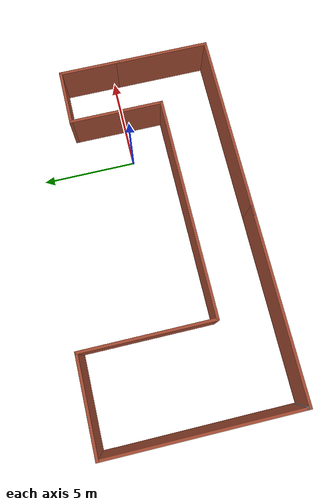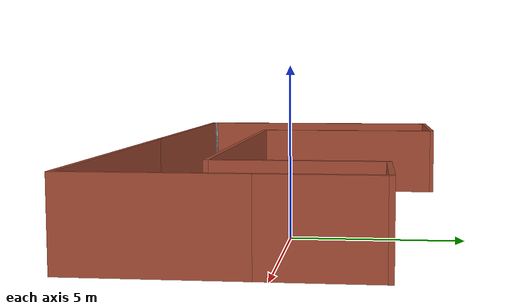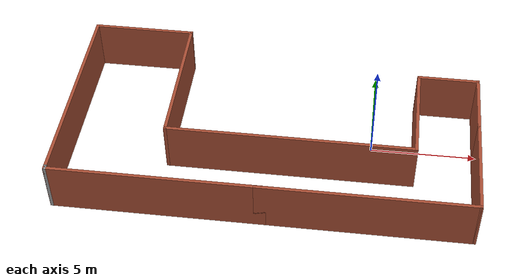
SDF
<?xml version='1.0'?>
<sdf version='1.6'>
  <model name='juhabasic'>
    <pose frame=''>-4.77 -0.185 0 0 -0 0</pose>
    <link name='Wall_0'>
      <collision name='Wall_0_Collision'>
        <geometry>
          <box>
            <size>10 0.15 2.5</size>
          </box>
        </geometry>
        <pose frame=''>0 0 1.25 0 -0 0</pose>
      </collision>
      <visual name='Wall_0_Visual'>
        <pose frame=''>0 0 1.25 0 -0 0</pose>
        <geometry>
          <box>
            <size>10 0.15 2.5</size>
          </box>
        </geometry>
        <material>
          <script>
            <uri>file://media/materials/scripts/gazebo.material</uri>
            <name>Gazebo/Bricks</name>
          </script>
          <ambient>1 1 1 1</ambient>
        </material>
        <meta>
          <layer>0</layer>
        </meta>
      </visual>
      <pose frame=''>4.725 -4.975 0 0 -0 0</pose>
    </link>
    <link name='Wall_1'>
      <collision name='Wall_1_Collision'>
        <geometry>
          <box>
            <size>5 0.15 2.5</size>
          </box>
        </geometry>
        <pose frame=''>0 0 1.25 0 -0 0</pose>
      </collision>
      <visual name='Wall_1_Visual'>
        <pose frame=''>0 0 1.25 0 -0 0</pose>
        <geometry>
          <box>
            <size>5 0.15 2.5</size>
          </box>
        </geometry>
        <material>
          <script>
            <uri>file://media/materials/scripts/gazebo.material</uri>
            <name>Gazebo/Bricks</name>
          </script>
          <ambient>1 1 1 1</ambient>
        </material>
        <meta>
          <layer>0</layer>
        </meta>
      </visual>
      <pose frame=''>9.65 -2.55 0 0 -0 1.5708</pose>
    </link>
    <link name='Wall_10'>
      <collision name='Wall_10_Collision'>
        <geometry>
          <box>
            <size>0.15 0.15 2.5</size>
          </box>
        </geometry>
        <pose frame=''>0 0 1.25 0 -0 0</pose>
      </collision>
      <visual name='Wall_10_Visual'>
        <pose frame=''>0 0 1.25 0 -0 0</pose>
        <geometry>
          <box>
            <size>0.15 0.15 2.5</size>
          </box>
        </geometry>
        <material>
          <script>
            <uri>file://media/materials/scripts/gazebo.material</uri>
            <name>Gazebo/Grey</name>
          </script>
          <ambient>1 1 1 1</ambient>
        </material>
        <meta>
          <layer>0</layer>
        </meta>
      </visual>
      <pose frame=''>-9.65 -4.875 0 0 -0 0</pose>
    </link>
    <link name='Wall_11'>
      <collision name='Wall_11_Collision'>
        <geometry>
          <box>
            <size>0.25 0.15 2.5</size>
          </box>
        </geometry>
        <pose frame=''>0 0 1.25 0 -0 0</pose>
      </collision>
      <visual name='Wall_11_Visual'>
        <pose frame=''>0 0 1.25 0 -0 0</pose>
        <geometry>
          <box>
            <size>0.25 0.15 2.5</size>
          </box>
        </geometry>
        <material>
          <script>
            <uri>file://media/materials/scripts/gazebo.material</uri>
            <name>Gazebo/Grey</name>
          </script>
          <ambient>1 1 1 1</ambient>
        </material>
        <meta>
          <layer>0</layer>
        </meta>
      </visual>
      <pose frame=''>-9.65 -4.925 0 0 0 -1.5708</pose>
    </link>
    <link name='Wall_12'>
      <collision name='Wall_12_Collision'>
        <geometry>
          <box>
            <size>10 0.15 2.5</size>
          </box>
        </geometry>
        <pose frame=''>0 0 1.25 0 -0 0</pose>
      </collision>
      <visual name='Wall_12_Visual'>
        <pose frame=''>0 0 1.25 0 -0 0</pose>
        <geometry>
          <box>
            <size>10 0.15 2.5</size>
          </box>
        </geometry>
        <material>
          <script>
            <uri>file://media/materials/scripts/gazebo.material</uri>
            <name>Gazebo/Bricks</name>
          </script>
          <ambient>1 1 1 1</ambient>
        </material>
        <meta>
          <layer>0</layer>
        </meta>
      </visual>
      <pose frame=''>-4.725 -4.975 0 0 -0 0</pose>
    </link>
    <link name='Wall_2'>
      <collision name='Wall_2_Collision'>
        <geometry>
          <box>
            <size>3.25 0.15 2.5</size>
          </box>
        </geometry>
        <pose frame=''>0 0 1.25 0 -0 0</pose>
      </collision>
      <visual name='Wall_2_Visual'>
        <pose frame=''>0 0 1.25 0 -0 0</pose>
        <geometry>
          <box>
            <size>3.25 0.15 2.5</size>
          </box>
        </geometry>
        <material>
          <script>
            <uri>file://media/materials/scripts/gazebo.material</uri>
            <name>Gazebo/Bricks</name>
          </script>
          <ambient>1 1 1 1</ambient>
        </material>
        <meta>
          <layer>0</layer>
        </meta>
      </visual>
      <pose frame=''>9.65 1.425 0 0 -0 1.5708</pose>
    </link>
    <link name='Wall_3'>
      <collision name='Wall_3_Collision'>
        <geometry>
          <box>
            <size>3 0.15 2.5</size>
          </box>
        </geometry>
        <pose frame=''>0 0 1.25 0 -0 0</pose>
      </collision>
      <visual name='Wall_3_Visual'>
        <pose frame=''>0 0 1.25 0 -0 0</pose>
        <geometry>
          <box>
            <size>3 0.15 2.5</size>
          </box>
        </geometry>
        <material>
          <script>
            <uri>file://media/materials/scripts/gazebo.material</uri>
            <name>Gazebo/Bricks</name>
          </script>
          <ambient>1 1 1 1</ambient>
        </material>
        <meta>
          <layer>0</layer>
        </meta>
      </visual>
      <pose frame=''>8.225 2.975 0 0 -0 3.14159</pose>
    </link>
    <link name='Wall_4'>
      <collision name='Wall_4_Collision'>
        <geometry>
          <box>
            <size>5 0.15 2.5</size>
          </box>
        </geometry>
        <pose frame=''>0 0 1.25 0 -0 0</pose>
      </collision>
      <visual name='Wall_4_Visual'>
        <pose frame=''>0 0 1.25 0 -0 0</pose>
        <geometry>
          <box>
            <size>5 0.15 2.5</size>
          </box>
        </geometry>
        <material>
          <script>
            <uri>file://media/materials/scripts/gazebo.material</uri>
            <name>Gazebo/Bricks</name>
          </script>
          <ambient>1 1 1 1</ambient>
        </material>
        <meta>
          <layer>0</layer>
        </meta>
      </visual>
      <pose frame=''>6.8 0.55 0 0 0 -1.5708</pose>
    </link>
    <link name='Wall_5'>
      <collision name='Wall_5_Collision'>
        <geometry>
          <box>
            <size>11.75 0.15 2.5</size>
          </box>
        </geometry>
        <pose frame=''>0 0 1.25 0 -0 0</pose>
      </collision>
      <visual name='Wall_5_Visual'>
        <pose frame=''>0 0 1.25 0 -0 0</pose>
        <geometry>
          <box>
            <size>11.75 0.15 2.5</size>
          </box>
        </geometry>
        <material>
          <script>
            <uri>file://media/materials/scripts/gazebo.material</uri>
            <name>Gazebo/Bricks</name>
          </script>
          <ambient>1 1 1 1</ambient>
        </material>
        <meta>
          <layer>0</layer>
        </meta>
      </visual>
      <pose frame=''>1 -1.875 0 0 -0 3.14159</pose>
    </link>
    <link name='Wall_6'>
      <collision name='Wall_6_Collision'>
        <geometry>
          <box>
            <size>7 0.15 2.5</size>
          </box>
        </geometry>
        <pose frame=''>0 0 1.25 0 -0 0</pose>
      </collision>
      <visual name='Wall_6_Visual'>
        <pose frame=''>0 0 1.25 0 -0 0</pose>
        <geometry>
          <box>
            <size>7 0.15 2.5</size>
          </box>
        </geometry>
        <material>
          <script>
            <uri>file://media/materials/scripts/gazebo.material</uri>
            <name>Gazebo/Bricks</name>
          </script>
          <ambient>1 1 1 1</ambient>
        </material>
        <meta>
          <layer>0</layer>
        </meta>
      </visual>
      <pose frame=''>-4.8 1.55 0 0 -0 1.5708</pose>
    </link>
    <link name='Wall_7'>
      <collision name='Wall_7_Collision'>
        <geometry>
          <box>
            <size>5 0.15 2.5</size>
          </box>
        </geometry>
        <pose frame=''>0 0 1.25 0 -0 0</pose>
      </collision>
      <visual name='Wall_7_Visual'>
        <pose frame=''>0 0 1.25 0 -0 0</pose>
        <geometry>
          <box>
            <size>5 0.15 2.5</size>
          </box>
        </geometry>
        <material>
          <script>
            <uri>file://media/materials/scripts/gazebo.material</uri>
            <name>Gazebo/Bricks</name>
          </script>
          <ambient>1 1 1 1</ambient>
        </material>
        <meta>
          <layer>0</layer>
        </meta>
      </visual>
      <pose frame=''>-7.225 4.975 0 0 -0 3.14159</pose>
    </link>
    <link name='Wall_8'>
      <collision name='Wall_8_Collision'>
        <geometry>
          <box>
            <size>10 0.15 2.5</size>
          </box>
        </geometry>
        <pose frame=''>0 0 1.25 0 -0 0</pose>
      </collision>
      <visual name='Wall_8_Visual'>
        <pose frame=''>0 0 1.25 0 -0 0</pose>
        <geometry>
          <box>
            <size>10 0.15 2.5</size>
          </box>
        </geometry>
        <material>
          <script>
            <uri>file://media/materials/scripts/gazebo.material</uri>
            <name>Gazebo/Bricks</name>
          </script>
          <ambient>1 1 1 1</ambient>
        </material>
        <meta>
          <layer>0</layer>
        </meta>
      </visual>
      <pose frame=''>-9.65 0.05 0 0 0 -1.5708</pose>
    </link>
    <link name='Wall_9'>
      <collision name='Wall_9_Collision'>
        <geometry>
          <box>
            <size>0.15 0.15 2.5</size>
          </box>
        </geometry>
        <pose frame=''>0 0 1.25 0 -0 0</pose>
      </collision>
      <visual name='Wall_9_Visual'>
        <pose frame=''>0 0 1.25 0 -0 0</pose>
        <geometry>
          <box>
            <size>0.15 0.15 2.5</size>
          </box>
        </geometry>
        <material>
          <script>
            <uri>file://media/materials/scripts/gazebo.material</uri>
            <name>Gazebo/Grey</name>
          </script>
          <ambient>1 1 1 1</ambient>
        </material>
        <meta>
          <layer>0</layer>
        </meta>
      </visual>
      <pose frame=''>-9.65 -4.875 0 0 -0 0</pose>
    </link>
    <static>1</static>
  </model>
</sdf>
